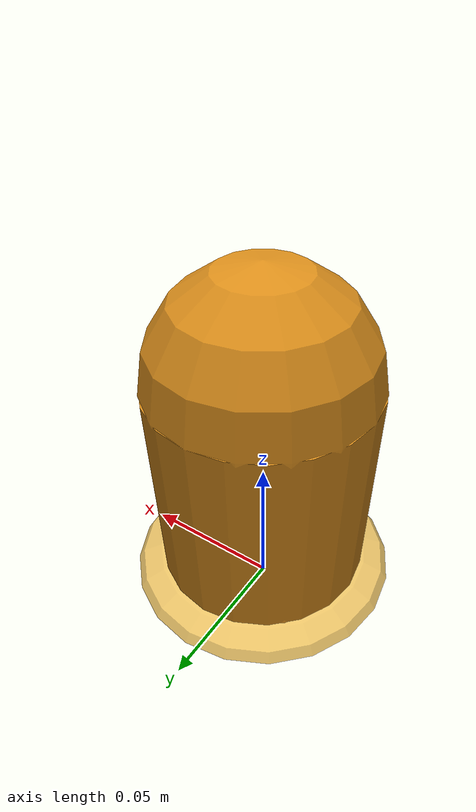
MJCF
<mujoco model="sander">
    <compiler angle="radian" autolimits="true" />
    <default>
        <default class="visual">
            <geom contype="0" conaffinity="0" group="2" />
        </default>
        <default class="pad_collision">
            <geom condim="4" friction="1.0 0.01 0.0005" solref="0.010 1.0"
                solimp="0.85 0.95 0.003" margin="0.0015" group="3" priority="8" />
        </default>
    </default>

    <asset>
        <material name="sander_housing" rgba="0.85 0.55 0.10 1" reflectance="0.1" />
        <material name="sander_pad" rgba="0.90 0.75 0.40 1" reflectance="0.0" />
    </asset>

    <worldbody>
        <body name="base">
            <site name="mount" group="3" />
            <site name="ft_sensor_site" group="3" />

            <!-- Housing stub: a capsule, i.e. a cylinder with rounded caps, no
                 flat-to-round edge anywhere. -->
            <geom name="sander_housing_visual" class="visual" type="capsule"
                material="sander_housing" size="0.035" fromto="0 0 0.015 0 0 0.085" />
            <geom name="sander_housing_collision" type="capsule" class="visual"
                contype="0" conaffinity="0" size="0.035" fromto="0 0 0.015 0 0 0.085" />

            <geom name="sander_pad_visual" class="visual" type="ellipsoid"
                material="sander_pad" pos="0 0 0.010" size="0.045 0.045 0.010" />
            <geom name="sander_pad_collision" type="ellipsoid" class="pad_collision"
                pos="0 0 0.010" size="0.045 0.045 0.010" />

            <inertial pos="0 0 0.04" mass="0.4" diaginertia="0.0006 0.0006 0.0004" />

            <site name="planner_tip_site" group="3" pos="0 0 0.010" />
            <site name="end_effector" group="3" pos="0 0 0.010" />

            <camera name="wrist_cam" pos="0 0.10 -0.11" xyaxes="1 0 0 0 -0.71 -0.71" />
        </body>
    </worldbody>

    <sensor>
        <force name="wrist_force_sensor" site="ft_sensor_site" />
        <torque name="wrist_torque_sensor" site="ft_sensor_site" />
    </sensor>
</mujoco>
